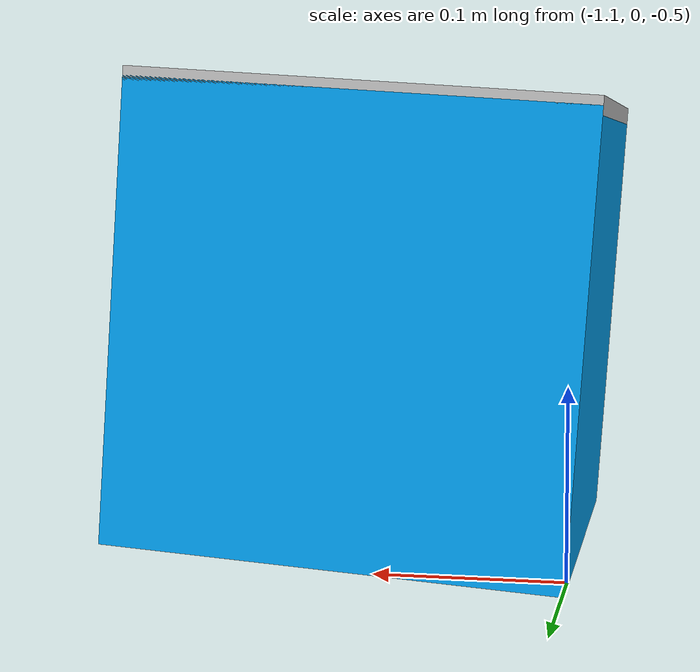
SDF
<?xml version="1.0" ?>
<sdf version="1.6">
  <model name="qr_box_marker_8">
    <static>true</static>
    <link name="link">
      <pose>-0.982347 -0.129249 -0.375443 0 -0.068818 0</pose>
      <self_collide>0</self_collide>
      <enable_wind>0</enable_wind>
      <kinematic>0</kinematic>
      <!-- Top face with QR code texture -->
      <visual name="top_face">
        <geometry>
          <box>
            <size>0.25 0.25 0.01</size> <!-- Reduced dimensions to half -->
          </box>
        </geometry>
        <material>
          <script>
            <uri>model://qr_box_marker_8/materials/scripts</uri>
            <uri>model://qr_box_marker_8/materials/textures/qr_code_8.png</uri>
            <name>qr_code_material_8</name>
          </script>
        </material>
        <pose>0 0 0.125 0 0 0</pose>
      </visual>

      <!-- Side faces with flat color -->
      <visual name="side_faces">
        <geometry>
          <box>
            <size>0.25 0.25 0.25</size> <!-- Reduced dimensions to half -->
          </box>
        </geometry>
        <material>
          <ambient>0.0 0.6 0.9 1</ambient>    <!-- Light blue -->
          <diffuse>0.0 0.6 0.9 1</diffuse>
          <specular>0.1 0.1 0.1 1</specular>
          <emissive>0 0 0 1</emissive>
        </material>
      </visual>

      <!-- Collision box -->
      <collision name="collision">
        <geometry>
          <box>
            <size>0.25 0.25 0.25</size> <!-- Reduced dimensions to half -->
          </box>
        </geometry>
      </collision>

    </link>
  </model>
</sdf>
